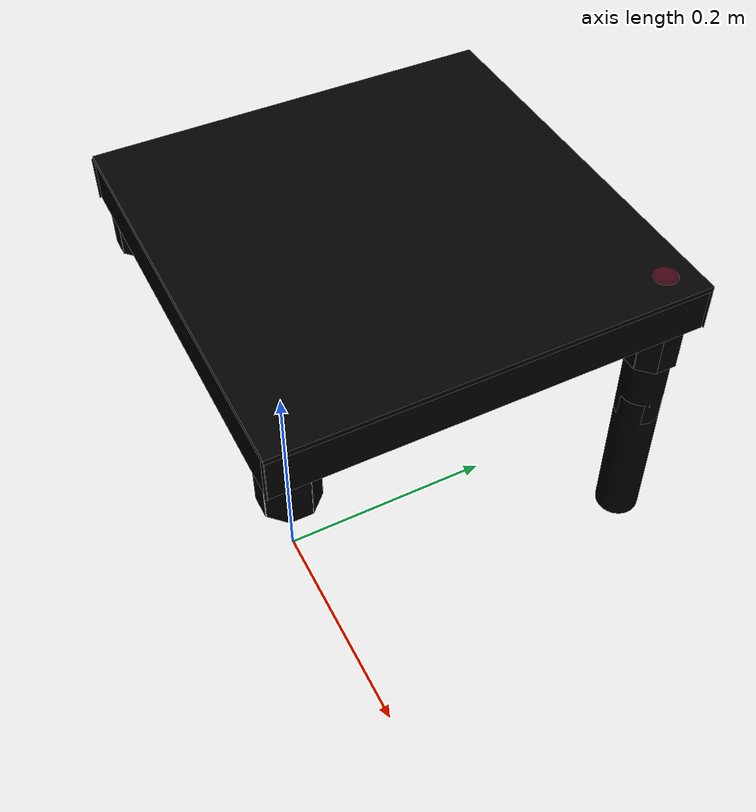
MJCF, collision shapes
<mujoco model="toy_table">
  <custom>
    <numeric data="-0.124142 0.0654 0.038787 0.0 0.999979 0.006494 0.0" name="4_part4_initpos" />
    <numeric data="0.400405 0.165759 0.023791 -0.671953 0.641026 -0.298472 -0.220183" name="2_part2_initpos" />
  </custom>
  <asset>
    <mesh file="toy_table/4.stl" name="part4" scale="0.042 0.042 0.042" />
    <mesh file="toy_table/2.stl" name="part2" scale="0.042 0.042 0.042" />
  </asset>
  <equality>
    <weld active="false" body1="2_part2" body2="4_part4" solimp="1 1 0.5" solref="0.01 0.3" />
  </equality>
  <worldbody>
    <body name="4_part4" pos="-0.19870370474214546 0.19870368374196531 0.13643401251069334" quat="1 0 0 0">
      <geom conaffinity="0" contype="0" density="0" mesh="part4" name="4_part4_mesh" pos="0.0 0.0 0.0" rgba="0.82 0.71 0.55 1" type="mesh" />
      <site name="4_part4_horizontal_radius_site" pos="0.0 0.0 0.0" quat="1 0 0 0" rgba="0 0 0 0" size="0.016800144133768378" />
      <site name="4_part4_top_site" pos="0.0 0.0 0.03774280480750086" quat="1 0 0 0" rgba="0 0 0 0" size="0.016800144133768378" />
      <site name="4_part4_bottom_site" pos="0.0 0.0 -0.03774280480750086" quat="1 0 0 0" rgba="0 0 0 0" size="0.016800144133768378" />
      <site name="4_part4_right_site" pos="0 0.23137183701242006 0.0" quat="1 0 0 0" rgba="0 0 0 0" size="0.016800144133768378" />
      <site name="4_part4_left_site" pos="0 -0.23137183701242006 0.0" quat="1 0 0 0" rgba="0 0 0 0" size="0.016800144133768378" />
      <site name="4_part4_corner_site8" pos="-0.23137183701242006 0.23137185801260024 0.03774280480750086" quat="1 0 0 0" rgba="0 0 0 0" size="0.016800144133768378" />
      <site name="4_part4_corner_site7" pos="0.23137183701242006 0.23137185801260024 0.03774280480750086" quat="1 0 0 0" rgba="0 0 0 0" size="0.016800144133768378" />
      <site name="4_part4_corner_site6" pos="0.23137183701242006 -0.23137185801260024 0.03774280480750086" quat="1 0 0 0" rgba="0 0 0 0" size="0.016800144133768378" />
      <site name="4_part4_corner_site5" pos="-0.23137183701242006 -0.23137185801260024 0.03774280480750086" quat="1 0 0 0" rgba="0 0 0 0" size="0.016800144133768378" />
      <site name="4_part4_corner_site4" pos="-0.23137183701242006 0.23137185801260024 -0.03774280480750086" quat="1 0 0 0" rgba="0 0 0 0" size="0.016800144133768378" />
      <site name="4_part4_corner_site3" pos="0.23137183701242006 0.23137185801260024 -0.03774280480750086" quat="1 0 0 0" rgba="0 0 0 0" size="0.016800144133768378" />
      <site name="4_part4_corner_site2" pos="0.23137183701242006 -0.23137185801260024 -0.03774280480750086" quat="1 0 0 0" rgba="0 0 0 0" size="0.016800144133768378" />
      <site name="4_part4_corner_site1" pos="-0.23137183701242006 -0.23137185801260024 -0.03774280480750086" quat="1 0 0 0" rgba="0 0 0 0" size="0.016800144133768378" />
      <site name="top-leg,,conn_site4" pos="0.19807369933712918 0.19807369933712918 0.003301228322285486" quat="0 0 1 0" rgba="0.9019 0.0980 0.2941 0.3" size="0.01679342264788419" />
      <site name="top-leg,,conn_site3" pos="0.19807369933712918 -0.19903970762482084 0.003301228322285486" quat="0 0 1 0" rgba="0.9019 0.0980 0.2941 0.3" size="0.016800144133768374" />
      <site name="top-leg,,conn_site2" pos="-0.19945971122816508 -0.1982837011388013 0.003301228322285486" quat="0 0 1 0" rgba="0.9019 0.0980 0.2941 0.3" size="0.016800144133768374" />
      <site name="top-leg,,conn_site1" pos="-0.19903970762482084 0.19903970762482084 0.003301228322285486" quat="0 0 1 0" rgba="0.9019 0.0980 0.2941 0.3" size="0.016800144133768374" />
      <geom density="50" name="noviz_collision_4_part4_0" pos="-0.19797810549999997 0.1706402705 -0.016" quat="1 0 0 0" rgba="0 0 0 0" size="0.0113435 0.0001701525 0.0485" solref="0.001 1" type="box" />
      <geom density="50" name="noviz_collision_4_part4_1" pos="-0.19797810549999997 0.2267679085 -0.016" quat="1 0 0 0" rgba="0 0 0 0" size="0.0113435 0.0001701525 0.0485" solref="0.001 1" type="box" />
      <geom density="50" name="noviz_collision_4_part4_2" pos="-0.21828297049999998 0.17858072049999998 -0.016" quat="0.9238796 0 0 -0.3826834" rgba="0 0 0 0" size="0.0113435 0.0001701525 0.0485" solref="0.001 1" type="box" />
      <geom density="50" name="noviz_collision_4_part4_3" pos="-0.17056086599999998 0.1987721505 -0.016" quat="0.7071067 0 0 -0.7071068" rgba="0 0 0 0" size="0.0113435 0.0001701525 0.0485" solref="0.001 1" type="box" />
      <geom density="50" name="noviz_collision_4_part4_4" pos="-0.226847313 0.1987721505 -0.016" quat="0.7071067 0 0 -0.7071068" rgba="0 0 0 0" size="0.0113435 0.0001701525 0.0485" solref="0.001 1" type="box" />
      <geom density="50" name="noviz_collision_4_part4_5" pos="-0.17858072049999998 0.21828297049999998 -0.016" quat="0.9238796 0 0 -0.3826834" rgba="0 0 0 0" size="0.0113435 0.0001701525 0.0485" solref="0.001 1" type="box" />
      <geom density="50" name="noviz_collision_4_part4_6" pos="-0.218294314 0.21892955 -0.016" quat="0.9238796 0 0 0.3826834" rgba="0 0 0 0" size="0.0113435 0.0001701525 0.0485" solref="0.001 1" type="box" />
      <geom density="50" name="noviz_collision_4_part4_7" pos="-0.17801354549999998 0.1786941555 -0.016" quat="0.9238796 0 0 0.3826834" rgba="0 0 0 0" size="0.0113435 0.0001701525 0.0485" solref="0.001 1" type="box" />
      <geom density="50" name="noviz_collision_4_part4_8" pos="0.1993846995 0.1706402705 -0.016" quat="1 0 0 0" rgba="0 0 0 0" size="0.0113435 0.0001701525 0.0485" solref="0.001 1" type="box" />
      <geom density="50" name="noviz_collision_4_part4_9" pos="0.1993846995 0.2267679085 -0.016" quat="1 0 0 0" rgba="0 0 0 0" size="0.0113435 0.0001701525 0.0485" solref="0.001 1" type="box" />
      <geom density="50" name="noviz_collision_4_part4_10" pos="0.179113865 0.17858072049999998 -0.016" quat="0.9238796 0 0 -0.3826834" rgba="0 0 0 0" size="0.0113435 0.0001701525 0.0485" solref="0.001 1" type="box" />
      <geom density="50" name="noviz_collision_4_part4_11" pos="0.226801939 0.1987721505 -0.016" quat="0.7071067 0 0 -0.7071068" rgba="0 0 0 0" size="0.0113435 0.0001701525 0.0485" solref="0.001 1" type="box" />
      <geom density="50" name="noviz_collision_4_part4_12" pos="0.17049280499999997 0.1987721505 -0.016" quat="0.7071067 0 0 -0.7071068" rgba="0 0 0 0" size="0.0113435 0.0001701525 0.0485" solref="0.001 1" type="box" />
      <geom density="50" name="noviz_collision_4_part4_13" pos="0.2187820845 0.21828297049999998 -0.016" quat="0.9238796 0 0 -0.3826834" rgba="0 0 0 0" size="0.0113435 0.0001701525 0.0485" solref="0.001 1" type="box" />
      <geom density="50" name="noviz_collision_4_part4_14" pos="0.179068491 0.21892955 -0.016" quat="0.9238796 0 0 0.3826834" rgba="0 0 0 0" size="0.0113435 0.0001701525 0.0485" solref="0.001 1" type="box" />
      <geom density="50" name="noviz_collision_4_part4_15" pos="0.21938328999999998 0.1786941555 -0.016" quat="0.9238796 0 0 0.3826834" rgba="0 0 0 0" size="0.0113435 0.0001701525 0.0485" solref="0.001 1" type="box" />
      <geom density="50" name="noviz_collision_4_part4_16" pos="0.1993846995 -0.226756565 -0.016" quat="1 0 0 0" rgba="0 0 0 0" size="0.0113435 0.0001701525 0.0485" solref="0.001 1" type="box" />
      <geom density="50" name="noviz_collision_4_part4_17" pos="0.1993846995 -0.17060624 -0.016" quat="1 0 0 0" rgba="0 0 0 0" size="0.0113435 0.0001701525 0.0485" solref="0.001 1" type="box" />
      <geom density="50" name="noviz_collision_4_part4_18" pos="0.2268359695 -0.1987040895 -0.016" quat="0.7071067 0 0 -0.7071068" rgba="0 0 0 0" size="0.0113435 0.0001701525 0.0485" solref="0.001 1" type="box" />
      <geom density="50" name="noviz_collision_4_part4_19" pos="0.17049280499999997 -0.1987040895 -0.016" quat="0.7071067 0 0 -0.7071068" rgba="0 0 0 0" size="0.0113435 0.0001701525 0.0485" solref="0.001 1" type="box" />
      <geom density="50" name="noviz_collision_4_part4_20" pos="0.21923582449999998 -0.21787460449999999 -0.016" quat="0.9238796 0 0 0.3826834" rgba="0 0 0 0" size="0.0113435 0.0001701525 0.0485" solref="0.001 1" type="box" />
      <geom density="50" name="noviz_collision_4_part4_21" pos="0.218566558 -0.178750873 -0.016" quat="0.9238796 0 0 -0.3826834" rgba="0 0 0 0" size="0.0113435 0.0001701525 0.0485" solref="0.001 1" type="box" />
      <geom density="50" name="noviz_collision_4_part4_22" pos="0.17876221650000002 -0.2185325275 -0.016" quat="0.9238796 0 0 -0.3826834" rgba="0 0 0 0" size="0.0113435 0.0001701525 0.0485" solref="0.001 1" type="box" />
      <geom density="50" name="noviz_collision_4_part4_23" pos="0.179181926 -0.178478629 -0.016" quat="0.9238796 0 0 0.3826834" rgba="0 0 0 0" size="0.0113435 0.0001701525 0.0485" solref="0.001 1" type="box" />
      <geom density="50" name="noviz_collision_4_part4_24" pos="-0.21840774899999998 -0.178728186 -0.016" quat="0.9238796 0 0 0.3826834" rgba="0 0 0 0" size="0.0113435 0.0001701525 0.0485" solref="0.001 1" type="box" />
      <geom density="50" name="noviz_collision_4_part4_25" pos="-0.19797810549999997 -0.1707310185 -0.016" quat="1 0 0 0" rgba="0 0 0 0" size="0.0113435 0.0001701525 0.0485" solref="0.001 1" type="box" />
      <geom density="50" name="noviz_collision_4_part4_26" pos="-0.19797810549999997 -0.2268359695 -0.016" quat="1 0 0 0" rgba="0 0 0 0" size="0.0113435 0.0001701525 0.0485" solref="0.001 1" type="box" />
      <geom density="50" name="noviz_collision_4_part4_27" pos="-0.1706402705 -0.1992712645 -0.016" quat="0.7071067 0 0 -0.7071068" rgba="0 0 0 0" size="0.0113435 0.0001701525 0.0485" solref="0.001 1" type="box" />
      <geom density="50" name="noviz_collision_4_part4_28" pos="-0.2268132825 -0.1992712645 -0.016" quat="0.7071067 0 0 -0.7071068" rgba="0 0 0 0" size="0.0113435 0.0001701525 0.0485" solref="0.001 1" type="box" />
      <geom density="50" name="noviz_collision_4_part4_29" pos="-0.1787395295 -0.2183964055 -0.016" quat="0.9238796 0 0 0.3826834" rgba="0 0 0 0" size="0.0113435 0.0001701525 0.0485" solref="0.001 1" type="box" />
      <geom density="50" name="noviz_collision_4_part4_30" pos="-0.218294314 -0.218906863 -0.016" quat="0.9238796 0 0 -0.3826834" rgba="0 0 0 0" size="0.0113435 0.0001701525 0.0485" solref="0.001 1" type="box" />
      <geom density="50" name="noviz_collision_4_part4_31" pos="-0.1786034075 -0.1792159565 -0.016" quat="0.9238796 0 0 -0.3826834" rgba="0 0 0 0" size="0.0113435 0.0001701525 0.0485" solref="0.001 1" type="box" />
      <geom density="50" name="noviz_collision_4_part4_32" pos="0.0 0.0 0.035981582" quat="1 0 0 0" rgba="0 0 0 0" size="0.2313733695 0.23013733695 0.002835875" solref="0.001 1" type="box" />
      <geom density="50" name="noviz_collision_4_part4_33" pos="0.0015540595 -0.2297852795 0.011" quat="1 0 0 0" rgba="0 0 0 0" size="0.23 0.0001701525 0.026" solref="0.001 1" type="box" />
      <geom density="50" name="noviz_collision_4_part4_34" pos="0.0015540595 0.229751249 0.011" quat="1 0 0 0" rgba="0 0 0 0" size="0.23 0.0001701525 0.026" solref="0.001 1" type="box" />
      <geom density="50" name="noviz_collision_4_part4_35" pos="0.2298987145 -0.0021212345 0.011" quat="0.7071067 0 0 -0.7071068" rgba="0 0 0 0" size="0.23 0.0001701525 0.026" solref="0.001 1" type="box" />
      <geom density="50" name="noviz_collision_4_part4_36" pos="-0.2298533405 -0.0021212345 0.011" quat="0.7071067 0 0 -0.7071068" rgba="0 0 0 0" size="0.23 0.0001701525 0.026" solref="0.001 1" type="box" />
    </body>
    <body name="2_part2" pos="0.0 0.39740740948429093 -0.0" quat="1 0 0 0">
      <geom conaffinity="0" contype="0" density="0" mesh="part2" name="2_part2_mesh" pos="0.0 0.0 0.0" rgba="0.82 0.71 0.55 1" type="mesh" />
      <site group="1" name="2_part2_ltgt_site" pos="0.02 0 -0.02" rgba="0 0 0 0" size="0.01 0.01 0.01" type="sphere" />
      <site group="1" name="2_part2_rtgt_site" pos="-0.02 0 -0.02" rgba="0 0 0 0" size="0.01 0.01 0.01" type="sphere" />
      <site name="2_part2_horizontal_radius_site" pos="0.0 0.0 0.0" quat="1 0 0 0" rgba="0 0 0 0" size="0.016800144133768378" />
      <site name="2_part2_top_site" pos="0.0 0.0 0.16785563708678283" quat="1 0 0 0" rgba="0 0 0 0" size="0.016800144133768378" />
      <site name="2_part2_bottom_site" pos="0.0 0.0 -0.16785563708678283" quat="1 0 0 0" rgba="0 0 0 0" size="0.016800144133768378" />
      <site name="2_part2_corner_site8" pos="-0.02663028646967926 0.02663028646967926 0.16785563708678283" quat="1 0 0 0" rgba="0 0 0 0" size="0.016800144133768378" />
      <site name="2_part2_corner_site7" pos="0.02663028646967926 0.02663028646967926 0.16785563708678283" quat="1 0 0 0" rgba="0 0 0 0" size="0.016800144133768378" />
      <site name="2_part2_corner_site6" pos="0.02663028646967926 -0.02663028646967926 0.16785563708678283" quat="1 0 0 0" rgba="0 0 0 0" size="0.016800144133768378" />
      <site name="2_part2_corner_site5" pos="-0.02663028646967926 -0.02663028646967926 0.16785563708678283" quat="1 0 0 0" rgba="0 0 0 0" size="0.016800144133768378" />
      <site name="2_part2_corner_site4" pos="-0.02663028646967926 0.02663028646967926 -0.16785563708678283" quat="1 0 0 0" rgba="0 0 0 0" size="0.016800144133768378" />
      <site name="2_part2_corner_site3" pos="0.02663028646967926 0.02663028646967926 -0.16785563708678283" quat="1 0 0 0" rgba="0 0 0 0" size="0.016800144133768378" />
      <site name="2_part2_corner_site2" pos="0.02663028646967926 -0.02663028646967926 -0.16785563708678283" quat="1 0 0 0" rgba="0 0 0 0" size="0.016800144133768378" />
      <site name="2_part2_corner_site1" pos="-0.02663028646967926 -0.02663028646967926 -0.16785563708678283" quat="1 0 0 0" rgba="0 0 0 0" size="0.016800144133768378" />
      <site name="leg-top,,conn_site4" pos="-0.0006300054050163141 -0.0006300054050163141 0.16473519883261845" quat="0 0 1 0" rgba="0.9019 0.0980 0.2941 0.3" size="0.016800144133768374" />
      <geom density="20" name="noviz_collision_2_part2_0" pos="0.0 0.0 0.0771358" quat="1 0 0 0" rgba="0 0 0 0" size="0.02382135 0.090748" solref="0.001 1" type="cylinder" />
      <geom density="20" name="noviz_collision_2_part2_1" pos="0.0 0.0 -0.0771358" quat="1 0 0 0" rgba="0 0 0 0" size="0.02382135 0.093" solref="0.001 1" type="cylinder" />
    </body>
  </worldbody>
  <actuator />
  <sensor />
  <contact />
  <default />
</mujoco>
